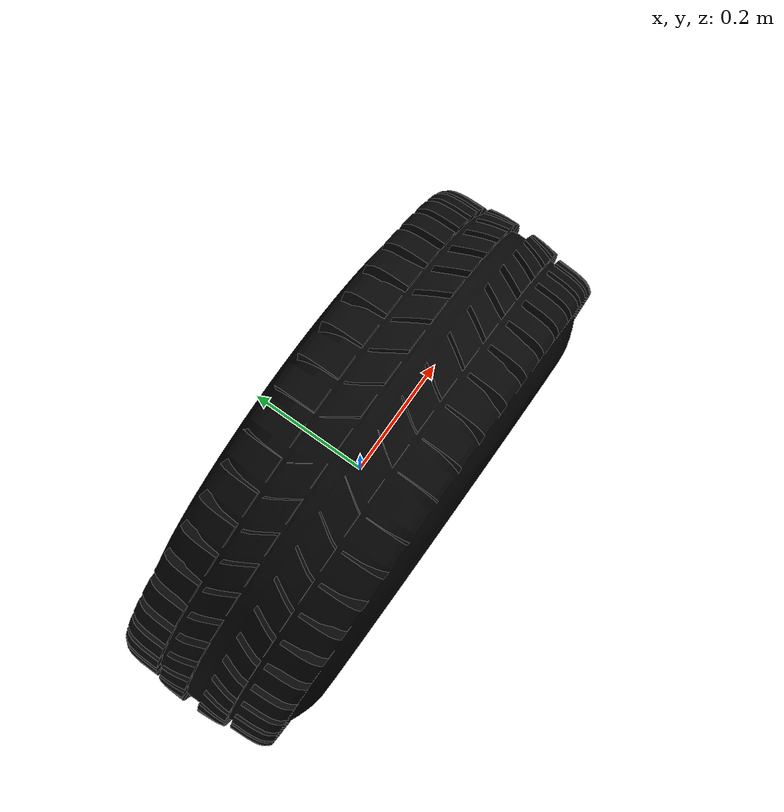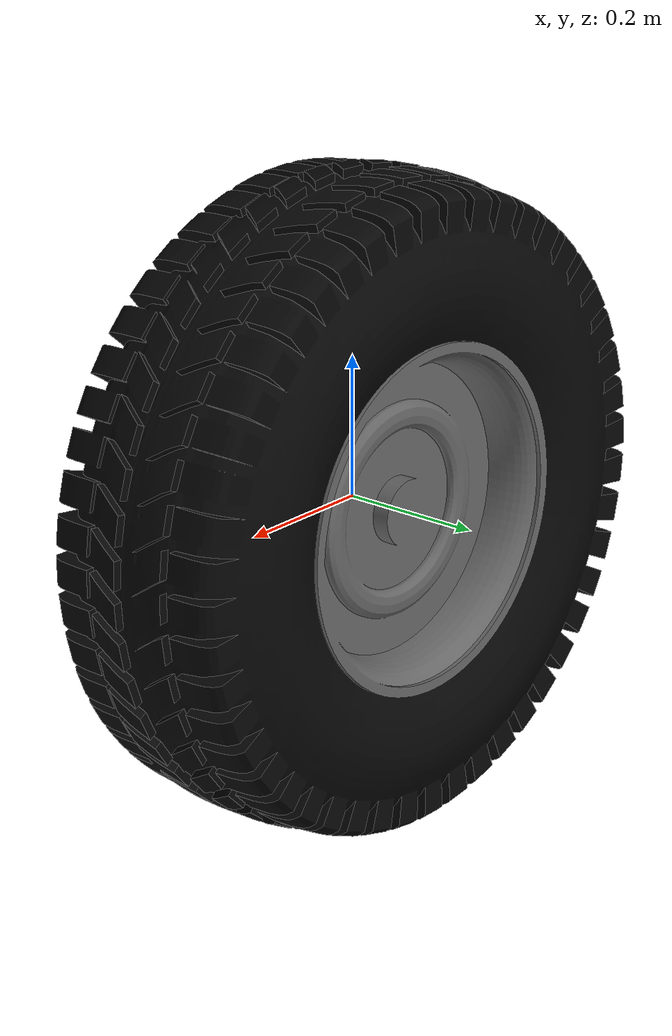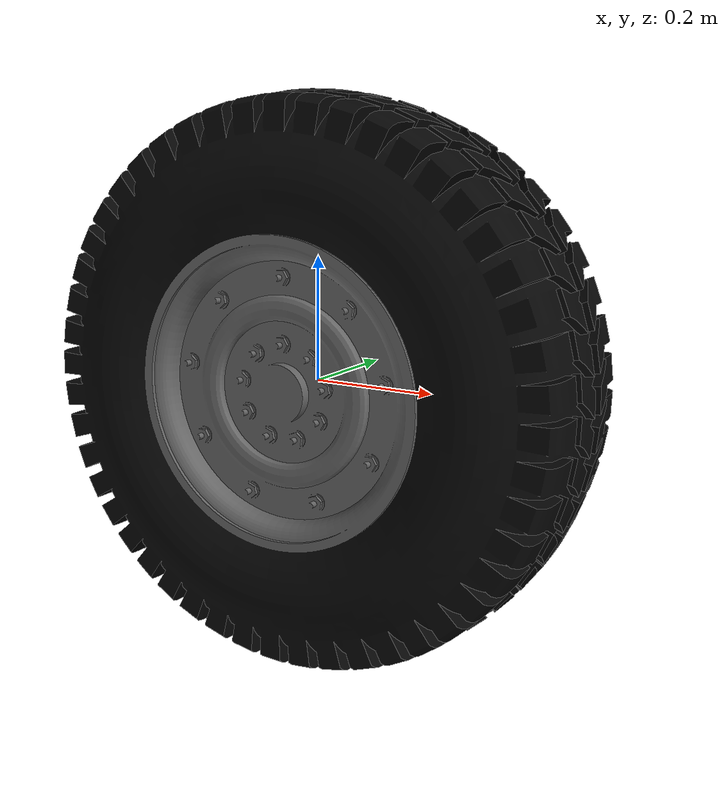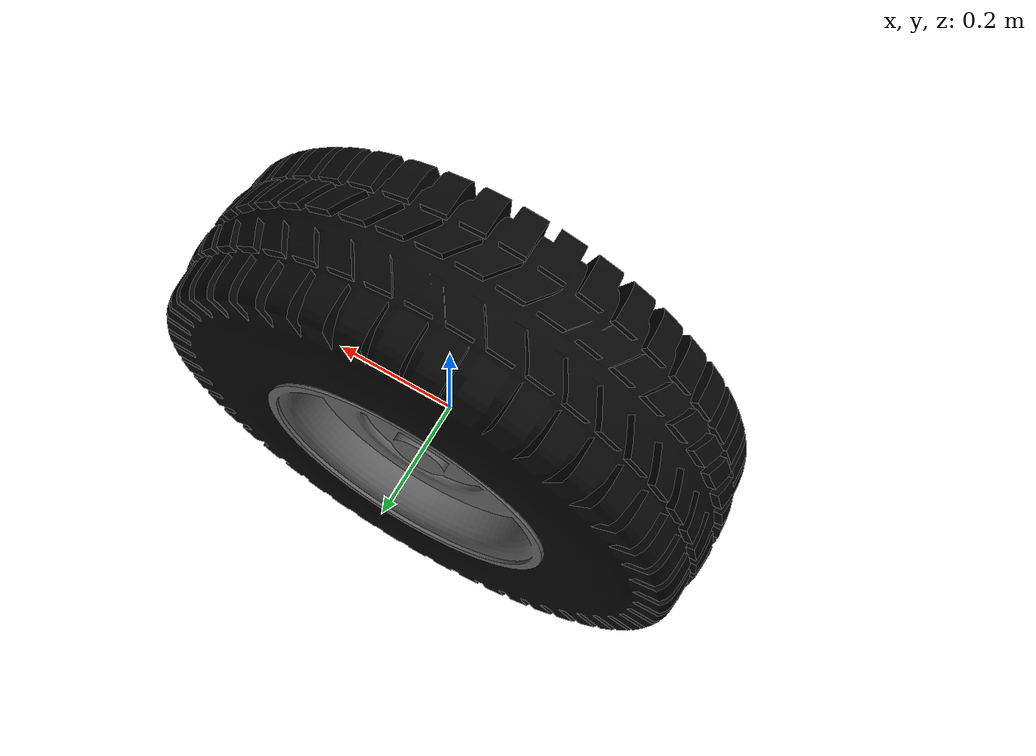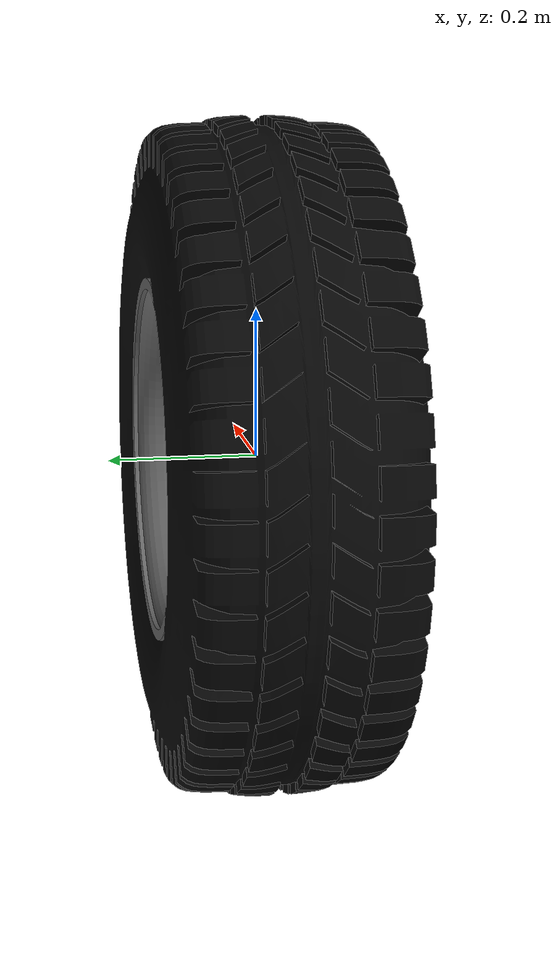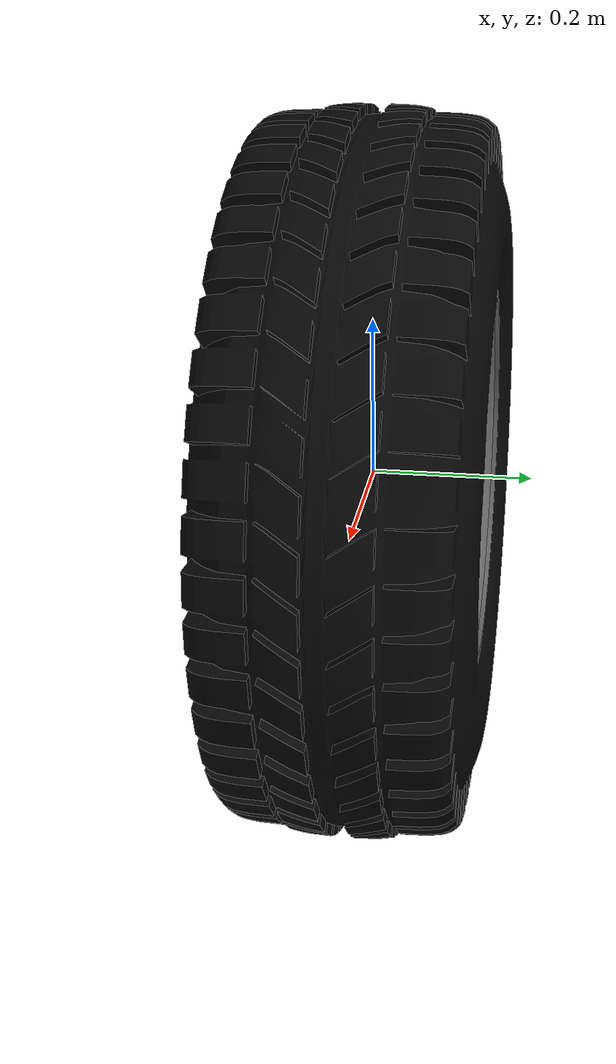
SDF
<?xml version="1.0"?>
<sdf version="1.5">
	<model name="wheel">
		<pose>0 0 0 0 0 0</pose>
		<link name="link">
			<frame name="wheel">
				<pose frame="wheel">0 0 0 0 0 0</pose>
			</frame>
			<visual name="visual">
				<geometry>
					<mesh>
						<uri>model://wheel/meshes/wheel_R.dae</uri>
						<scale>1.0 1.0 1.0</scale>
					</mesh>
				</geometry>
			</visual>
		</link>
	</model>
</sdf>
